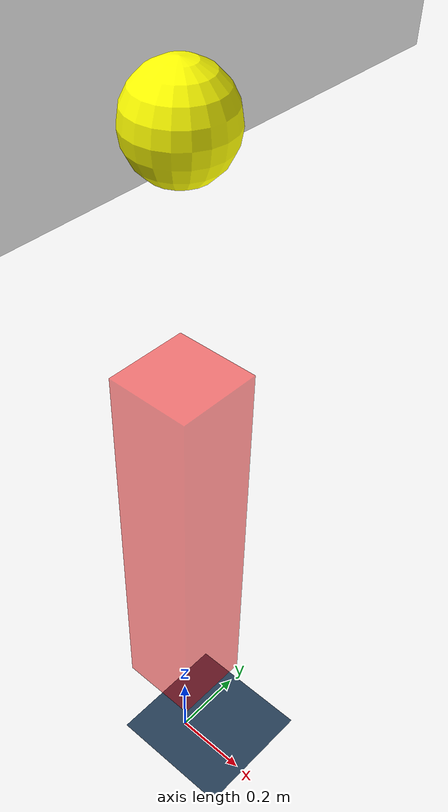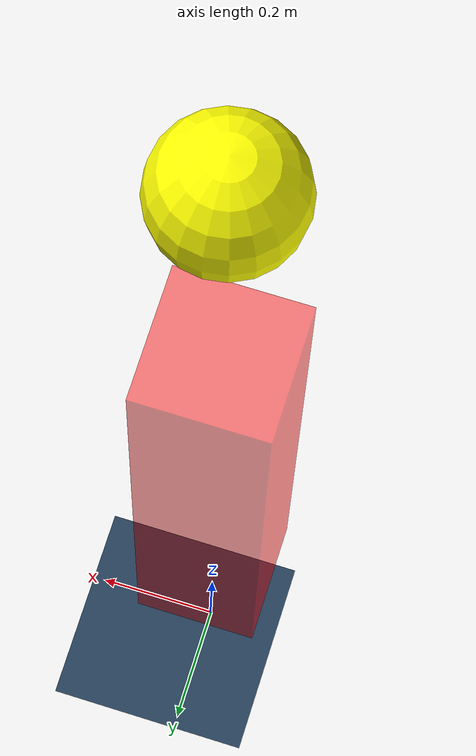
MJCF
<mujoco model="g1_5fingers_office_scene">
  <compiler angle="radian" autolimits="true"/>

  <option timestep="0.002" gravity="0 0 -9.81" cone="elliptic" jacobian="dense" solver="Newton" iterations="50"/>

  <statistic center="0 0 2" extent="20"/>

  <visual>
    <headlight diffuse="0.6 0.6 0.6" ambient="0.3 0.3 0.3" specular="0 0 0"/>
    <rgba haze="0.15 0.25 0.35 1"/>
    <global azimuth="-130" elevation="-20"/>
  </visual>

  <asset>
    <!-- Assets do ambiente -->
    <texture type="skybox" builtin="gradient" rgb1="0.3 0.5 0.7" rgb2="0 0 0" width="512" height="3072"/>
    <texture type="2d" name="groundplane" builtin="checker" mark="edge" rgb1="0.2 0.3 0.4" rgb2="0.1 0.2 0.3"
      markrgb="0.8 0.8 0.8" width="300" height="300"/>
    <material name="groundplane" texture="groundplane" texuniform="true" texrepeat="5 5" reflectance="0.2"/>
    <material name="wall" rgba="0.9 0.9 0.9 1" specular="0.1"/>

    <!-- Paredes do escritório -->
    <mesh name="office_walls" file="3d escritorio/body1_structure/body1_structure.obj" scale="0.01 0.01 0.01"/>
  </asset>

  <worldbody>
    <!-- Iluminação -->
    <light pos="0 0 10" dir="0 0 -1" directional="true"/>
    <light pos="10 10 8" dir="-1 -1 -1" directional="false"/>

    <!-- Chão do escritório -->
    <geom name="floor" size="50 50 0.05" type="plane" material="groundplane"/>

    <!-- Paredes do escritório -->
    <body name="walls" pos="-5.73 -7.00 0">
      <geom name="office_walls_geom" mesh="office_walls" type="mesh" contype="1" conaffinity="1" material="wall"/>
    </body>

    <!-- Incluir o G1 de 5 dedos convertido - ajuste a posição conforme necessário -->
    <!-- Após converter o URDF para XML, substitua esta linha pelo include do arquivo convertido -->

    <!-- Por enquanto, marcador visual do robô -->
    <body name="robot_placeholder" pos="0 0 0.80">
      <geom name="placeholder" type="box" size="0.1 0.1 0.5" rgba="1 0 0 0.5"/>
      <site name="info" pos="0 0 1" size="0.1" rgba="1 1 0 1"/>
    </body>
  </worldbody>
</mujoco>
